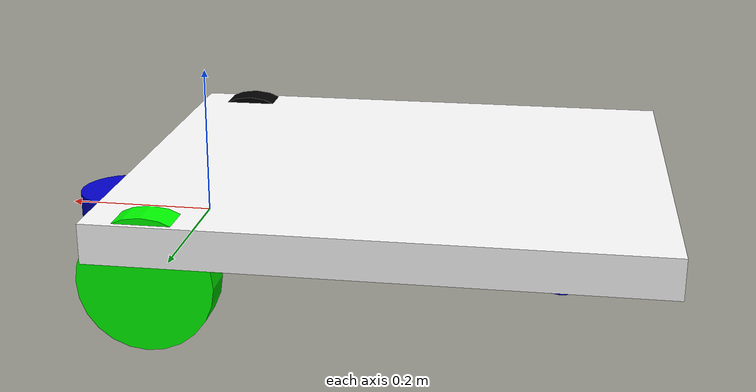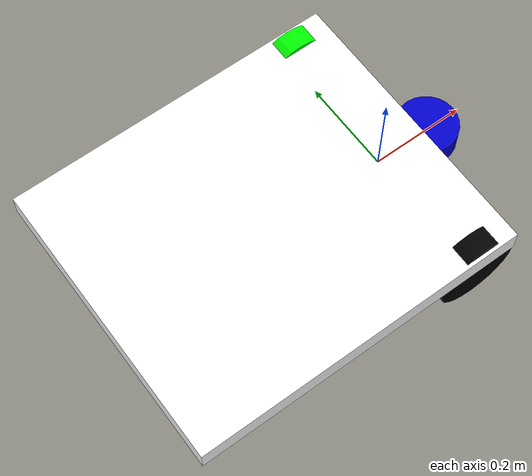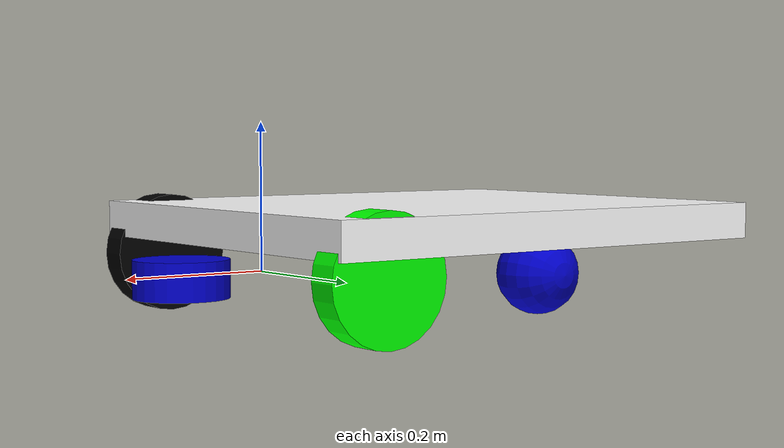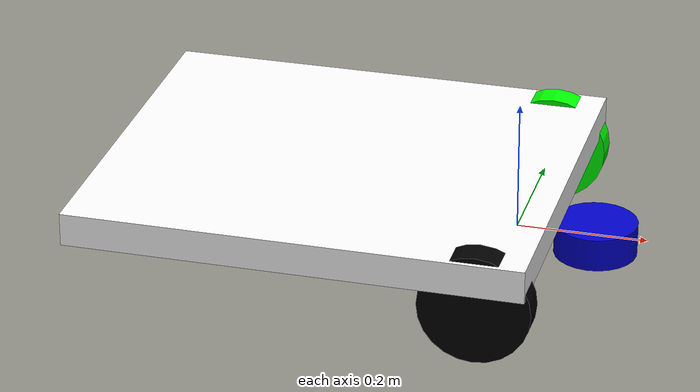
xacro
<?xml version="1.0"?>
<robot xmlns:xacro="http://www.ros.org/wiki/xacro"
 	xmlns:sensor="http://playerstage.sourceforge.net/gazebo/xmlschema/#sensor"
    	xmlns:controller="http://playerstage.sourceforge.net/gazebo/xmlschema/#controller"
    	xmlns:interface="http://playerstage.sourceforge.net/gazebo/xmlschema/#interface"
	name="bigbot">

	<!-- Defining the colors used in this robot -->
	<material name="Black">
	  <color rgba="0.0 0.0 0.0 1.0"/>
	</material>

	<material name="Red">
	  <color rgba="0.8 0.0 0.0 1.0"/>
	</material>

	<material name="White">
	  <color rgba="1.0 1.0 1.0 1.0"/>
	</material>

	<material name="Blue">
	  <color rgba="0.0 0.0 0.8 1.0"/>
	</material>

	<material name="Green">
	  <color rgba="0.0 1.0 0.0 1.0"/>
	</material>

	<!-- Defining parameters-->
	<xacro:property name="mass_base" value="24" />
	<xacro:property name="length_base" value="0.7001" />
	<xacro:property name="width_base" value="0.60325" />
	<xacro:property name="depth_base" value="0.0508" />

 	<xacro:property name="wheel_base" value=" 0.5461" /> <!--23.25 in outside to outside  - 0.0435m width of wheel  -->
	<xacro:property name="length_wheel" value="0.0435" /> <!-- 0.0435 from diagram of wheel-->
	<xacro:property name="radius_wheel" value="0.085" /> <!-- 0.170 (from diagram of wheel)/2 -->
	<xacro:property name="extend_wheel" value="0.0" /> <!-- to be added to collision for axile -->
	<xacro:property name="M_PI_2" value="1.570796327" />
 	<xacro:property name="M_PI" value="3.1415926535897931" />
	<xacro:property name="radius_caster" value="0.0635" />

        <!-- Define a macro -->
	<xacro:macro name="default_inertial" params="mass">
               <inertial>
                       <mass value="${mass}" />
                       <inertia ixx="1.0" ixy="0.0" ixz="0.0"
                                iyy="1.0" iyz="0.0"
                                izz="1.0" />
               </inertial>
	</xacro:macro>

	<xacro:macro name="cylinder_inertial" params="m r h">
		<inertial>
			 <mass value="${m}" />
			<inertia  ixx="${m*(3*r*r+h*h)/12}" ixy = "0" ixz = "0"
	      		iyy="${m*(3*r*r+h*h)/12}" iyz = "0"
	      		izz="${m*r*r/2}" />
               </inertial>
	</xacro:macro>

	<!-- per https://en.wikipedia.org/wiki/List_of_moments_of_inertia
	  ixx = m/12(h * h  + d * d)
	  iyy = m/12(w * w  + d * d)
	  izz= m/12(w * w  + h * h)
	 -->

	<xacro:macro name="box_inertial" params="m w h d x">
		<inertial>
			 <mass value="${m}" />
			<inertia  ixx="${m*(h*h + d *d)/12}"
			ixy = "0" ixz = "0"
	      		iyy="${m*(w*w+d*d)/12}"
			iyz = "0"
	      		izz="${m*(h*h+w*w)/12}"
			/>

			<origin xyz="${x} 0 0"/>
        </inertial>
	</xacro:macro>

	<!-- base_footprint is a fictitious link(frame) that is on the ground right below base_link origin -->
	<link name="base_footprint"/>

	<joint name="base_footprint_joint" type="fixed">
		<origin xyz="0 0 0.01" rpy="0 0 0" />
		<parent link="base_footprint" />
		<child link="base_link" />
	</joint>

	<gazebo reference="base_footprint">
		<material>Gazebo/Red</material>
		<turnGravityOff>false</turnGravityOff>
	</gazebo>

	<link name="base_link">
   		<visual>
			<geometry>
      				<box size="${length_base} ${width_base} ${depth_base}"/>
     		</geometry>
			<origin xyz="-0.274 0 ${depth_base}" rpy="0 0 0" />
			<material name="White"/>
   		</visual>
		<collision>
			<geometry>
       				<box size="${length_base} ${width_base} ${depth_base}"/>
			</geometry>
			<origin rpy="0 0 0" xyz="-0.274 0 0"/>
		</collision>

		<xacro:box_inertial m="${mass_base}" w="${width_base}" h="${length_base}" d="${depth_base}"  x="-0.274" />
 	</link>

	<gazebo reference="base_link">
	    <material>Gazebo/White</material>
	    <turnGravityOff>false</turnGravityOff>
	</gazebo>

 	<link name="left_wheel">
   		<visual>
     			<geometry>
       				<cylinder length="${length_wheel}" radius="${radius_wheel}"/>
     			</geometry>

			<origin rpy="0 0 0" xyz="0 0 0"/>
   			<material name="Green"/>
		</visual>
		<collision>
			<geometry>
       				<cylinder length="${length_wheel+ extend_wheel}" radius="${radius_wheel}"/>
			</geometry>
		</collision>
		<xacro:cylinder_inertial m="1" r="${radius_wheel}" h="${length_wheel}"/>
 	</link>

	<gazebo reference="left_wheel">
		<turnGravityOff>false</turnGravityOff>
		<material>Gazebo/Green</material>
	</gazebo>

 	<link name="right_wheel">
   		<visual>
     			<geometry>
       				<cylinder length="${length_wheel}" radius="${radius_wheel}"/>
     			</geometry>
			<origin rpy="0 0 0" xyz="0 0 0"/>
   			<material name="Black"/>
   		</visual>
		<collision>
			<geometry>
       				<cylinder length="${length_wheel+ extend_wheel}" radius="${radius_wheel}"/>
			</geometry>
		</collision>
		<xacro:cylinder_inertial m="1" r="${radius_wheel}" h="${length_wheel}"/>

 	</link>

	<gazebo reference="right_wheel">
		<turnGravityOff>false</turnGravityOff>
		<material>Gazebo/Black</material>
	</gazebo>
  <!--continuous-->
	 <joint name="base_to_left_wheel" type="continuous">
		<parent link="base_link"/>
		<child link="left_wheel"/>
		<origin rpy="1.5707 0 0" xyz="0 ${wheel_base/2} 0"/>
		<axis rpy="0 0 0" xyz="0 0 -1"/>
	 </joint>

	 <joint name="base_to_right_wheel" type="continuous">
		<parent link="base_link"/>
		<child link="right_wheel"/>
		<origin rpy="1.5707 0 0" xyz="0 ${-wheel_base/2} 0"/>
		<axis rpy="0 0 0" xyz="0 0 -1"/>
	 </joint>

	<!--Caster Back   -->

    <link name="caster_link">
        <visual>
        <origin xyz="0 0 0" rpy="${M_PI/2} 0 0" />
        <geometry>
            <sphere radius="${radius_caster}" />
        </geometry>
        <material name="Blue" />
        </visual>

        <collision>
            <geometry>
            <sphere radius="${radius_caster}" />
            </geometry>
            <origin xyz="0 0. 0" rpy="${M_PI/2} 0 0" />
        </collision>
        <inertial>
            <mass value="1" />
            <origin xyz="0 0 0" />
            <inertia ixx="0.001" ixy="0.0" ixz="0.0"
                    iyy="0.001" iyz="0.0"
                    izz="0.001" />
        </inertial>
    </link>

   <joint name="caster_joint" type="fixed">
      <parent link="base_link"/>
      <child link="caster_link"/>
      <origin xyz="-0.4948 0.0 -0.04048" rpy="0 0 0"/>
   </joint>

<!-- R was ${-M_PI/2} -->

  <!-- laser joint -->

  <joint name="laser_joint" type="fixed">
    <origin xyz="0.12144 0.0 -0.0127" rpy="0 0 0"/>
    <parent link="base_link"/>
    <axis xyz="0 1 0" />
    <child link="laser_point"/>
  </joint>

  <link name="laser_point">
    <collision>
      <origin xyz="0 0 0" rpy="0 0 0"/>
      <geometry>
        <cylinder length=".0001" radius="0.0001"/>
      </geometry>
    </collision>

    <visual>
      <origin xyz="0 0 0" rpy="0 0 0"/>
      <geometry>
        <cylinder length=".0001" radius="0.0001"/>
      </geometry>
      <material name="Blue" />
    </visual>

    <inertial>
      <mass value="1e-5" />
      <origin xyz="0 0 0" rpy="0 0 0"/>
      <inertia ixx="1e-6" ixy="0" ixz="0" iyy="1e-6" iyz="0" izz="1e-6" />
    </inertial>
  </link>

  <joint name="laser_rotate" type="fixed">
    <origin xyz="0 0 0" rpy="3.14 0 -1.57"/>
    <parent link="laser_point"/>
    <axis xyz="0 1 0" />
    <child link="laser_frame"/>
  </joint>

  <!-- sweep Laser -->

  <link name="laser_frame">
    <collision>
      <origin xyz="0 0 0" rpy="0 0 0"/>
      <geometry>
        <cylinder length=".0508" radius="0.0635"/>
      </geometry>
    </collision>

    <visual>
      <origin xyz="0 0 0" rpy="0 0 0"/>
      <geometry>
        <cylinder length=".0508" radius="0.0635"/>
      </geometry>
      <material name="Blue" />
    </visual>

    <inertial>
      <mass value="1e-5" />
      <origin xyz="0 0 0" rpy="0 0 0"/>
      <inertia ixx="1e-6" ixy="0" ixz="0" iyy="1e-6" iyz="0" izz="1e-6" />
    </inertial>
  </link>

  <gazebo reference="caster_link">
    <turnGravityOff>false</turnGravityOff>
  </gazebo>

  <!-- Differential drive controller  -->
  <!--https://github.com/ros-simulation/gazebo_ros_pkgs/wiki/ROS-2-Migration:-Diff-drive
  https://github.com/ros-simulation/gazebo_ros_pkgs/blob/foxy/gazebo_plugins/src/gazebo_ros_diff_drive.cpp
  -->
  <gazebo>
    <plugin name="differential_drive_controller" filename="libgazebo_ros_diff_drive.so">

   <!-- Plugin update rate in Hz -->
    <update_rate>30</update_rate>

    <!-- Name of left joint, defaults to `left_joint` -->
    <left_joint>base_to_left_wheel</left_joint>

    <!-- Name of right joint, defaults to `right_joint` -->
    <right_joint>base_to_right_wheel</right_joint>

    <!-- The distance from the center of one wheel to the other, in meters, defaults to 0.34 m -->
    <wheel_separation>${wheel_base}</wheel_separation>

    <!-- Diameter of the wheels, in meters, defaults to 0.15 m -->
    <wheel_diameter>${2*radius_wheel}</wheel_diameter>

    <!-- Wheel acceleration, in rad/s^2, defaults to 0.0 rad/s^2 -->
    <max_wheel_acceleration>1.8</max_wheel_acceleration>

    <!-- Maximum torque which the wheels can produce, in Nm, defaults to 5 Nm -->
    <max_wheel_torque>20</max_wheel_torque>

    <!-- Odometry frame, defaults to `odom` -->
    <odometry_frame>odom</odometry_frame>

    <!-- Robot frame to calculate odometry from, defaults to `base_footprint` -->
    <robot_base_frame>base_footprint</robot_base_frame>

    <!-- Set to true to publish transforms for the odometry, defaults to true -->
    <publish_odom>true</publish_odom>

    <!-- Set to true to publish transforms for the wheel links, defaults to false -->
    <publish_wheel_tf>true</publish_wheel_tf>

    <!-- Set to true to publish transforms for the odom, defaults to false -->
    <publish_odom_tf>true</publish_odom_tf>

    </plugin>

    <plugin name="joint_state" filename="libgazebo_ros_joint_state_publisher.so">
      <ros>
        <remapping>~/out:=joint_states</remapping>
      </ros>
      <update_rate>30</update_rate>
      <joint_name>base_to_left_wheel</joint_name>
      <joint_name>base_to_right_wheel</joint_name>
    </plugin>
  </gazebo>

<gazebo reference="laser_frame">
    <sensor type="gpu_ray" name="head_hokuyo_sensor">
      <pose>0 0 0 0 0 0</pose>
      <visualize>false</visualize>
      <update_rate>7</update_rate>
      <ray>
        <scan>
          <horizontal>
            <samples>720</samples>
            <resolution>1</resolution>
            <min_angle>-1.570796</min_angle>
            <max_angle>1.570796</max_angle>
          </horizontal>
        </scan>
        <range>
          <min>0.10</min>
          <max>12.0</max>
          <resolution>0.01</resolution>
        </range>
        <noise>
          <type>gaussian</type>
          <mean>0.0</mean>
          <stddev>0.01</stddev>
        </noise>
      </ray>
      <plugin name="gazebo_ros_head_hokuyo_controller" filename="libgazebo_ros_gpu_laser.so">
        <topicName>/scan</topicName>
        <frameName>hokuyo_link</frameName>
      </plugin>
    </sensor>
  </gazebo>

</robot>
